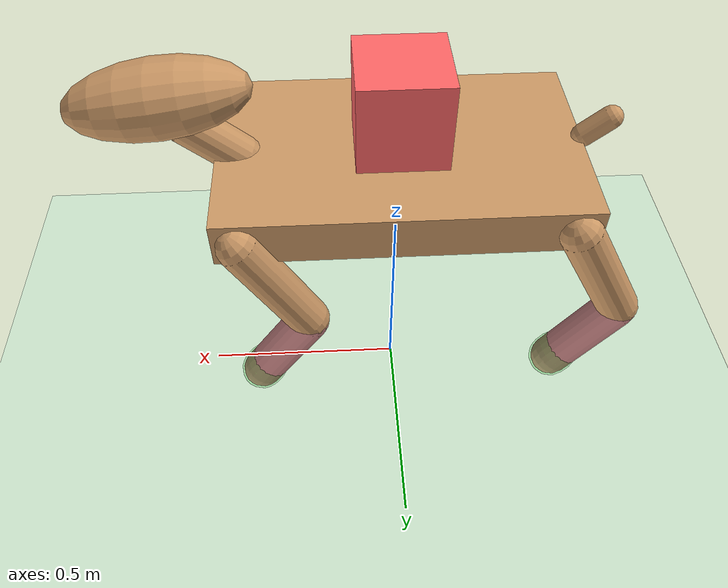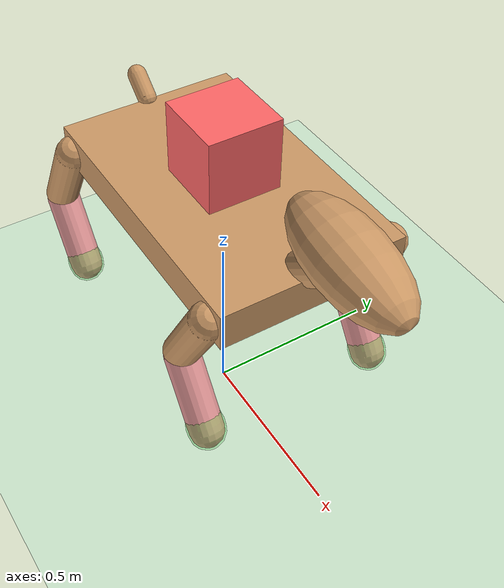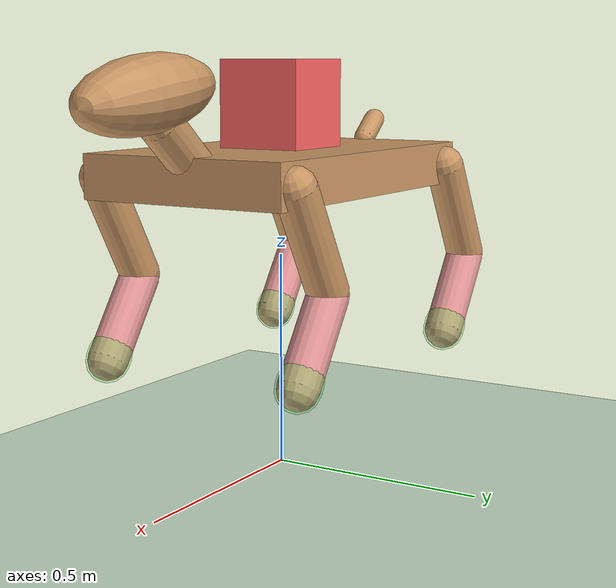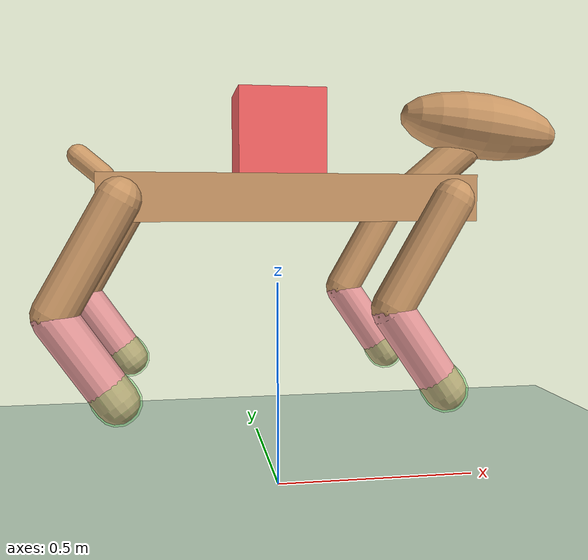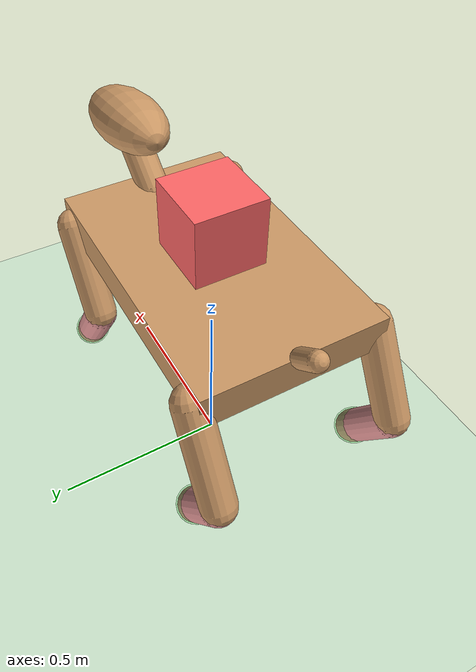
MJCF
<mujoco model="cheetah">
  <!-- defaults -->
  <compiler angle="radian" coordinate="local" inertiafromgeom="true"/>
  <default>
    <!-- in this model, mass is calculated based on density -->
    <joint armature=".1" damping=".01" limited="true" solimplimit="0 .8 .03" solreflimit=".02 1" stiffness="8"/>
    <geom conaffinity="0" condim="3" contype="1" friction="1 .1 .1" rgba="0.8 0.6 .4 1" solimp="0.0 0.8 0.01" solref="0.02 1"/>
    <motor ctrllimited="true" ctrlrange="-1 1"/>
  </default>
  <size nstack="300000" nuser_geom="1"/>
  <option gravity="0 0 -9.81" timestep="0.01"/>
  <!-- sky and floor -->
  <asset>
    <texture builtin="gradient" height="100" rgb1="1 1 1" rgb2="0 0 0" type="skybox" width="100"/>
    <texture builtin="flat" height="1278" mark="cross" markrgb="1 1 1" name="texgeom" random="0.01" rgb1="0.8 0.6 0.4" rgb2="0.8 0.6 0.4" type="cube" width="127"/>
    <texture builtin="checker" height="100" name="texplane" rgb1="0 0 0" rgb2="0.8 0.8 0.8" type="2d" width="100"/>
    <material name="MatPlane" reflectance="0.5" shininess="1" specular="1" texrepeat="60 60" texture="texplane"/>
    <material name="geom" texture="texgeom" texuniform="true"/>
  </asset>
  <worldbody>
    <light cutoff="100" diffuse="1 1 1" dir="-0 0 -1.3" directional="true" exponent="1" pos="0 0 1.3" specular=".1 .1 .1"/>
    <geom conaffinity="1" condim="3" material="MatPlane" name="floor" pos="0 0 0" rgba="0.8 0.9 0.8 1" size="40 40 40" type="plane"/>
    <!-- body -->
    <!-- torso -->
    <body name="torso" pos="0 0 .7">
      <camera name="track" mode="trackcom" pos="0 -3 0.3" xyaxes="1 0 0 0 0 1"/>
      <joint armature="0" axis="1 0 0" damping="0" limited="false" name="rootx" pos="0 0 0" stiffness="0" type="slide"/>
      <joint armature="0" axis="0 0 1" damping="0" limited="false" name="rootz" pos="0 0 0" stiffness="0" type="slide"/>
      <joint armature="0" axis="0 1 0" damping="0" limited="false" name="rooty" pos="0 0 0" stiffness="0" type="hinge"/>
      <geom name="torso" size=".4 .25 .05" type="box"/>
      <geom name="load" pos=".0 0 .15" size=".1 .1 .1" type="box" rgba="1 .4 .4 1"/>
      <geom axisangle="0 1 0 .87" density="10" name="neck" pos=".4 0 .075" size="0.046 .075" type="capsule"/>
      <geom axisangle="0 1 0 1.7" density="10" name="head" pos=".5 0 .18" size="0.08 .095 0.2" type="ellipsoid"/>
      <geom axisangle="0 1 0 -.87" density="10" name="tail" pos="-.43 0 .075" size="0.026 .035" type="capsule"/>

      <!-- right -->
      <!-- torso/rbthigh -->
      <body name="rbthigh" pos="-.35 0 0">
        <joint axis="0 1 0" damping="4.5" name="rbthigh" pos="0 0 0" range="-1 .7" stiffness="180" type="hinge"/>
        <geom axisangle="0 1 0 .52" name="rbthigh" pos="-.07 -.25 -.12" size="0.046 .133" type="capsule"/>
        <!-- torso/rbthigh/rbshin -->
        <body name="rbshin" pos="-.14 0 -.24">
          <joint axis="0 1 0" damping="3" name="rbshin" pos="0 0 0" range="-1.2 .87" stiffness="120" type="hinge"/>
          <geom axisangle="0 1 0 -.6" name="rbshin" pos=".065 -.25 -.09" rgba="0.9 0.6 0.6 1" size="0.046 .106" type="capsule"/>
          <site axisangle="0 1 0 -.6" name="rb_sensor_site" pos=".12 -.25 -.17" rgba="0 1 0 .1" size="0.05 .010" type="capsule"/>
        </body>
      </body>
      <!-- torso/rfthigh -->
      <body name="rfthigh" pos=".35 0 0">
        <joint axis="0 1 0" damping="4.5" name="rfthigh" pos="0 0 0" range="-1 .7" stiffness="180" type="hinge"/>
        <geom axisangle="0 1 0 .52" name="rfthigh" pos="-.07 -.25 -.12" size="0.046 .133" type="capsule"/>
        <!-- torso/rfthigh/rfshin -->
        <body name="rfshin" pos="-.14 0 -.24">
          <joint axis="0 1 0" damping="3" name="rfshin" pos="0 0 0" range="-1.2 .87" stiffness="120" type="hinge"/>
          <geom axisangle="0 1 0 -.6" name="rfshin" pos=".065 -.25 -.09" rgba="0.9 0.6 0.6 1" size="0.046 .106" type="capsule"/>
          <site axisangle="0 1 0 -.6" name="rf_sensor_site" pos=".12 -.25 -.17" rgba="0 1 0 .1" size="0.05 .010" type="capsule"/>
        </body>
      </body>

      <!-- left -->
      <!-- torso/lbthigh -->
      <body name="lbthigh" pos="-.35 0 0">
        <joint axis="0 1 0" damping="4.5" name="lbthigh" pos="0 0 0" range="-1 .7" stiffness="180" type="hinge"/>
        <geom axisangle="0 1 0 .52" name="lbthigh" pos="-.07 .25 -.12" size="0.046 .133" type="capsule"/>
        <!-- torso/lbthigh/lbshin -->
        <body name="lbshin" pos="-.14 0 -.24">
          <joint axis="0 1 0" damping="3" name="lbshin" pos="0 0 0" range="-1.2 .87" stiffness="120" type="hinge"/>
          <geom axisangle="0 1 0 -.6" name="lbshin" pos=".065 .25 -.09" rgba="0.9 0.6 0.6 1" size="0.046 .106" type="capsule"/>
          <site axisangle="0 1 0 -.6" name="lb_sensor_site" pos=".12 .25 -.17" rgba="0 1 0 .1" size="0.05 .010" type="capsule"/>
        </body>
      </body>
      <!-- torso/lfthigh -->
      <body name="lfthigh" pos=".35 0 0">
        <joint axis="0 1 0" damping="4.5" name="lfthigh" pos="0 0 0" range="-1 .7" stiffness="180" type="hinge"/>
        <geom axisangle="0 1 0 .52" name="lfthigh" pos="-.07 .25 -.12" size="0.046 .133" type="capsule"/>
        <!-- torso/lfthigh/lfshin -->
        <body name="lfshin" pos="-.14 0 -.24">
          <joint axis="0 1 0" damping="3" name="lfshin" pos="0 0 0" range="-1.2 .87" stiffness="120" type="hinge"/>
          <geom axisangle="0 1 0 -.6" name="lfshin" pos=".065 .25 -.09" rgba="0.9 0.6 0.6 1" size="0.046 .106" type="capsule"/>
          <site axisangle="0 1 0 -.6" name="lf_sensor_site" pos=".12 .25 -.17" rgba="0 1 0 .1" size="0.05 .010" type="capsule"/>
        </body>
      </body>
    </body>
  </worldbody>
  <actuator>
    <motor gear="120" joint="rbthigh" name="rbthigh"/>
    <motor gear="90" joint="rbshin" name="rbshin"/>
    <motor gear="120" joint="rfthigh" name="rfthigh"/>
    <motor gear="60" joint="rfshin" name="rfshin"/>
    <motor gear="120" joint="lbthigh" name="lbthigh"/>
    <motor gear="90" joint="lbshin" name="lbshin"/>
    <motor gear="120" joint="lfthigh" name="lfthigh"/>
    <motor gear="60" joint="lfshin" name="lfshin"/>
  </actuator>

  <sensor>
     <touch name="rb_sensor" site="rb_sensor_site" />
     <touch name="rf_sensor" site="rf_sensor_site" />
     <touch name="lb_sensor" site="lb_sensor_site" />
     <touch name="lf_sensor" site="lf_sensor_site" />
  </sensor>
</mujoco>
